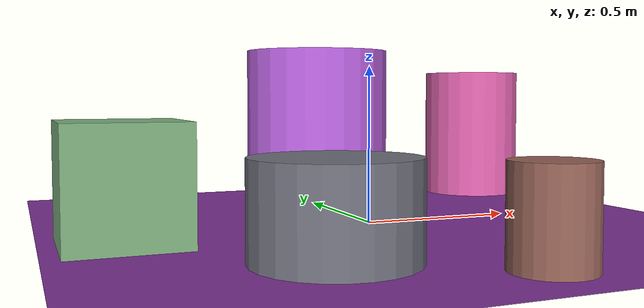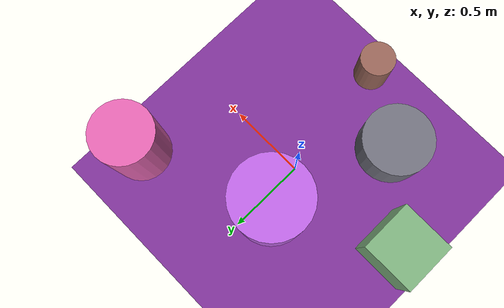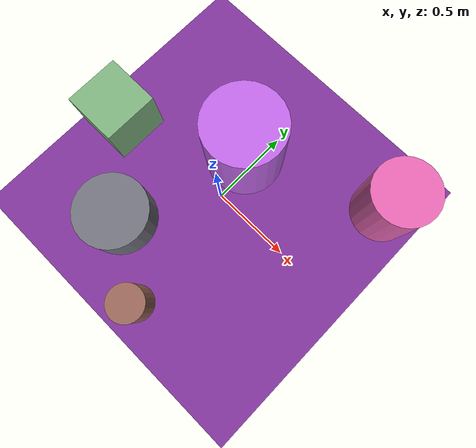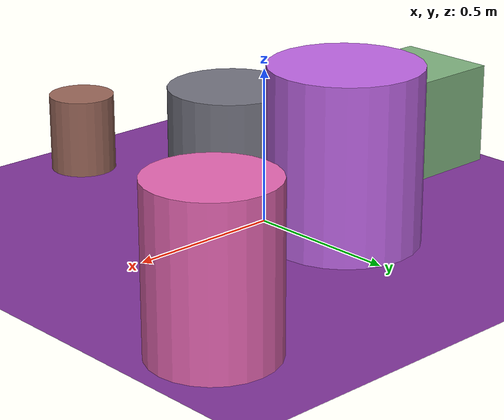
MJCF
<mujoco>
   <asset>
<texture type="skybox" builtin="gradient" rgb1="0.3 0.3 0.1" rgb2="1.0 0.2 0.1" width="256" height="256"/>
<texture name="checker_0" builtin="checker" type="2d" rgb1="0.4 0.9 0.4" rgb2="0.6 0.5 0.6" width="200" height="200"/>
<texture name="gradient_1" builtin="gradient" rgb1="0.8 0.0 0.9" rgb2="0.7 0.8 0.9" width="200" height="200"/>
<texture name="flat_2" builtin="flat" rgb1="0.9 0.4 0.7" rgb2="0.9 0.4 0.7"  width="200" height="200"/>
<texture name="gradient_3" builtin="gradient" rgb1="0.7 0.2 0.3" rgb2="0.2 0.7 0.7" width="200" height="200"/>
<texture name="checker_4" builtin="checker" type="2d" rgb1="0.4 0.4 0.6" rgb2="0.8 0.4 0.1" width="200" height="200"/><material name="checker_0_mat" reflectance="0" texrepeat="10 10" texture="checker_0" texuniform="false" />
<material name="gradient_1_mat" reflectance="0" texture="gradient_1" texuniform="true"/>
<material name="flat_2_mat" reflectance="0" texture="flat_2" texuniform="true"/>
<material name="gradient_3_mat" reflectance="0" texture="gradient_3" texuniform="true"/>
<material name="checker_4_mat" reflectance="0" texrepeat="10 10" texture="checker_4" texuniform="false" />
   </asset>

   <worldbody>
      <light diffuse=".9 .9 .9" pos="0 0 3" dir="0 0 -1"/>
     <geom type="plane" size="1 1 0.1" rgba="0.5 0.2 0.6 1"/>
<geom type="box" pos="-0.78 -0.08 0.17" size="0.17 0.17 0.17" material="checker_0_mat" />
<geom type="cylinder" pos="-0.07 0.28 0.28" size="0.24 0.28 0.28" material="gradient_1_mat" />
<geom type="cylinder" pos="0.76 0.61 0.25" size="0.19 0.25 0.25" material="flat_2_mat" />
<geom type="cylinder" pos="-0.33 -0.52 0.13" size="0.22 0.13 0.13" material="gradient_3_mat" />
<geom type="cylinder" pos="0.1 -0.8 0.13" size="0.11 0.13 0.13" material="checker_4_mat" /><camera euler="60 0 180" fovy="60" name="camera_a" pos="0 -1.5 1"></camera>   </worldbody>
</mujoco>
